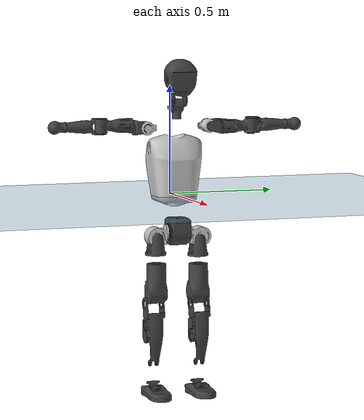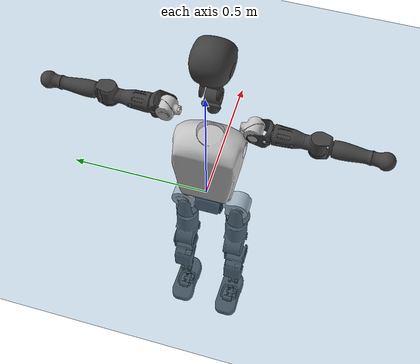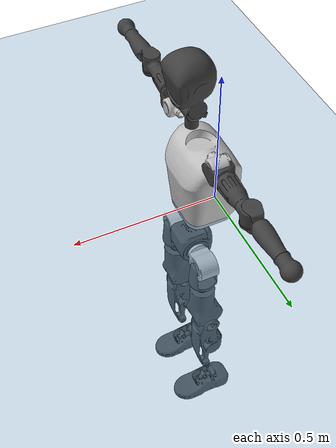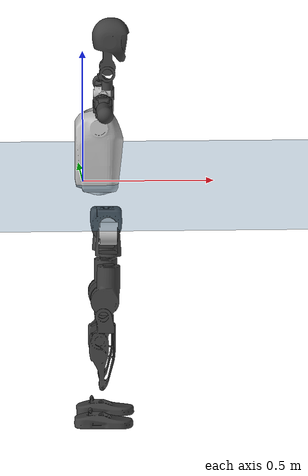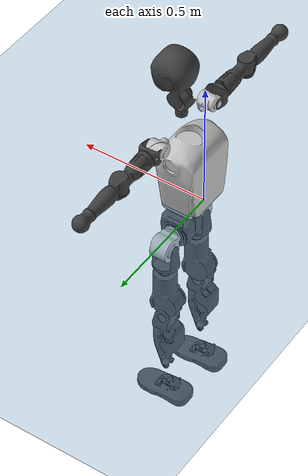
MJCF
<mujoco model="T1">
  <compiler angle="radian" assetdir="assets" balanceinertia="true" inertiafromgeom="false"/>

  <option timestep="0.005" density="1.2" viscosity="2e-05"/>

  <size nkey="1"/>

  <visual>
    <quality shadowsize="8192"/>
    <map shadowclip="0.5"/>
  </visual>

  <default>
    <default class="/">
      <joint armature="0.01" damping="0.01" frictionloss="0.1"/>
      <geom contype="0" conaffinity="0" group="1" solref="-1000 -80"/>
      <site size="0.01 0.005 0.005" group="5"/>
      <general forcelimited="true" biastype="affine" gainprm="25" biasprm="0 -25 -0.6"/>
      <default class="t1">
        <geom rgba="0.25 0.25 0.25 1"/>
        <default class="visual">
          <geom type="mesh" group="2"/>
        </default>
        <default class="collision">
          <geom group="3"/>
        </default>
        <default class="foot">
          <geom size="0.1115 0.05 0.015" type="box" condim="6" group="4" priority="1" solimp="0.015 1 0.015"/>
        </default>
        <default class="reward_collision_sphere">
          <geom group="5" rgba="1 0 0 1"/>
        </default>
      </default>
    </default>
  </default>

  <asset>
    <texture type="skybox" colorspace="auto" name="//unnamed_texture_0" builtin="gradient" rgb1="0.95 0.95 0.95" rgb2="0.95 0.95 0.95" width="100" height="600"/>
    <texture type="2d" colorspace="auto" name="texplane" builtin="checker" rgb1="0.345 0.575 0.748" rgb2="0.345 0.575 0.748" markrgb="1 1 1" width="512" height="512"/>
    <material name="MatPlane" class="/" texture="texplane" texuniform="true" texrepeat="2 2" specular="0.9"/>
    <mesh name="Trunk" class="/" file="Trunk.stl"/>
    <mesh name="H1" class="/" file="H1.stl"/>
    <mesh name="H2" class="/" file="H2.stl"/>
    <mesh name="AL1" class="/" file="AL1.stl"/>
    <mesh name="AL2" class="/" file="AL2.stl"/>
    <mesh name="AL3" class="/" file="AL3.stl"/>
    <mesh name="left_hand_link" class="/" file="left_hand_link.stl"/>
    <mesh name="AR1" class="/" file="AR1.stl"/>
    <mesh name="AR2" class="/" file="AR2.stl"/>
    <mesh name="AR3" class="/" file="AR3.stl"/>
    <mesh name="right_hand_link" class="/" file="right_hand_link.stl"/>
    <mesh name="Waist" class="/" file="Waist.stl"/>
    <mesh name="Hip_Pitch_Left" class="/" file="Hip_Pitch_Left.stl"/>
    <mesh name="Hip_Roll_Left" class="/" file="Hip_Roll_Left.stl"/>
    <mesh name="Hip_Yaw_Left" class="/" file="Hip_Yaw_Left.stl"/>
    <mesh name="Shank_Left" class="/" file="Shank_Left.stl"/>
    <mesh name="Ankle_Cross_Left" class="/" file="Ankle_Cross_Left.stl"/>
    <mesh name="left_foot_link" class="/" file="left_foot_link.stl"/>
    <mesh name="Hip_Pitch_Right" class="/" file="Hip_Pitch_Right.stl"/>
    <mesh name="Hip_Roll_Right" class="/" file="Hip_Roll_Right.stl"/>
    <mesh name="Hip_Yaw_Right" class="/" file="Hip_Yaw_Right.stl"/>
    <mesh name="Shank_Right" class="/" file="Shank_Right.stl"/>
    <mesh name="Ankle_Cross_Right" class="/" file="Ankle_Cross_Right.stl"/>
    <mesh name="right_foot_link" class="/" file="right_foot_link.stl"/>
  </asset>

  <worldbody>
    <geom name="floor" class="/" size="100 100 0.125" type="plane" group="0" material="MatPlane"/>
    <light name="toplight_shadow" class="/" pos="0 0 5" dir="0.0990148 0.0990148 -0.990148" type="directional" ambient="0.04 0.04 0.04" diffuse="0.55 0.55 0.55" specular="0.12 0.12 0.12"/>
    <light name="toplight_fill" class="/" pos="0 0 5" dir="0.0990148 0.0990148 -0.990148" type="directional" castshadow="false" ambient="0.04 0.04 0.04" diffuse="0.3 0.3 0.3" specular="0.08 0.08 0.08"/>
    <body name="trunk" childclass="t1" pos="-0.000302028 0.00238233 0.00203989" quat="0.999997 -0.000577542 0.00216138 -0.0011681">
      <inertial pos="0.0774225 0.000638425 0.146751" quat="0.999836 -0.0118616 0.0124228 -0.00568534" mass="23.8409" diaginertia="0.383939 0.0747195 0.281324"/>
      <joint name="//unnamed_joint_0" type="free" armature="0" damping="0" frictionloss="0"/>
      <geom name="//unnamed_geom_1" class="visual" rgba="0.76 0.76 0.76 1" mesh="Trunk"/>
      <geom name="//unnamed_geom_2" class="collision" size="0.0948493 0.126466 0.189699" pos="0.0833245 0 0.169008" type="box"/>
      <geom name="//unnamed_geom_3" class="reward_collision_sphere" size="0.145436" pos="0.0833245 0 0.14084"/>
      <geom name="//unnamed_geom_4" class="reward_collision_sphere" size="0.0189699" pos="0.0833245 0.0847302 0"/>
      <geom name="//unnamed_geom_5" class="reward_collision_sphere" size="0.0189699" pos="0.0833245 -0.0847302 0"/>
      <geom name="//unnamed_geom_6" class="reward_collision_sphere" size="0.0189699" pos="0.0833245 0.10666 0.253513"/>
      <geom name="//unnamed_geom_7" class="reward_collision_sphere" size="0.0189699" pos="0.0833245 -0.10666 0.253513"/>
      <site name="imu" pos="-0.0235334 -0.00081103 0.022763" size="0.0126466"/>
      <camera name="track" pos="0 -1.99365 0" quat="0.707107 0.707107 0 0" mode="trackcom"/>
      <camera name="ego_camera" pos="0.169427 0 0.59153" quat="-0.5 -0.5 0.5 0.5"/>
      <body name="H1" pos="0.0924708 -0.00175676 0.350234" quat="1 -5.63876e-07 -3.50777e-06 3.5115e-07">
        <inertial pos="-0.00215331 -0.00383827 0.0808563" quat="0.76519 -0.0068206 0.00105873 0.643768" mass="0.897879" diaginertia="0.001269 0.000215137 0.000832184"/>
        <joint name="AAHead_yaw" pos="0 0 0" axis="0.00291997 -0.00724498 0.999969" range="-1.66329 1.61115" armature="0.00764213" damping="0.0161699" frictionloss="0.0799795"/>
        <geom name="//unnamed_geom_8" class="visual" mesh="H1"/>
        <body name="H2" pos="0.001289 0.00998282 0.0865049" quat="1 -0.000413784 0.000276114 0.000105294">
          <inertial pos="0.00489526 0.00744847 0.147935" quat="0.984006 0.13208 -0.0882945 -0.0805617" mass="1.28221" diaginertia="0.0110434 0.00216648 0.00988094"/>
          <joint name="Head_pitch" pos="0 0 0" axis="0.00119852 -0.999998 0.00186652" range="-1.1938 0.341679" armature="0.010416" damping="0.0455831" frictionloss="0.137644"/>
          <geom name="//unnamed_geom_9" class="visual" mesh="H2"/>
          <geom name="//unnamed_geom_10" class="collision" size="0.101173" pos="0.0138874 0 0.154924"/>
          <geom name="//unnamed_geom_11" class="reward_collision_sphere" size="0.113819" pos="0.0277748 0 0.14084"/>
        </body>
      </body>
      <body name="AL1" pos="0.081729 0.109493 0.31632" quat="0.99999 -0.00403424 0.00124764 -0.00108583">
        <inertial pos="0.0027836 0.0464031 -0.00192188" quat="0.504568 0.497794 -0.504273 0.493275" mass="1.10728" diaginertia="0.00733907 0.00145469 0.00181074"/>
        <joint name="Left_Shoulder_Pitch" pos="0 0 0" axis="0.0055577 0.999713 -0.0233176" stiffness="0.000967043" range="-3.24812 1.05081" armature="0.0125851" damping="0.0469678" frictionloss="0.110071"/>
        <geom name="//unnamed_geom_12" class="visual" rgba="0.76 0.76 0.76 1" mesh="AL1"/>
        <body name="AL2" pos="0.0074611 0.046244 -0.000712894" quat="1 -0.000366591 0.00034685 0.000202289">
          <inertial pos="0.00694735 0.030043 0.00221302" quat="0.489361 0.517261 -0.48328 0.509321" mass="0.301809" diaginertia="0.00202577 0.000329267 0.000968874"/>
          <joint name="Left_Shoulder_Roll" pos="0 0 0" axis="-0.999952 0.00271454 -0.00941629" stiffness="0.0481485" range="-1.61701 1.77448" armature="0.00727794" damping="0.0189398" frictionloss="0.122832"/>
          <geom name="//unnamed_geom_13" class="visual" mesh="AL2"/>
          <body name="AL3" pos="-0.000151898 0.0597473 -0.00291323" quat="1 7.67516e-05 0.000321269 0.000285517">
            <inertial pos="-0.00692324 0.0929955 -0.00126054" quat="0.704685 0.709372 -0.0140623 -0.00347655" mass="2.41453" diaginertia="0.0654716 0.0137347 0.00391596"/>
            <joint name="Left_Elbow_Pitch" pos="0 0 0" axis="-0.00440846 -0.999952 -0.00880333" stiffness="0.00366235" range="-2.09652 2.29246" armature="0.00643743" damping="0.00556643" frictionloss="0.114616"/>
            <geom name="//unnamed_geom_14" class="visual" mesh="AL3"/>
            <geom name="//unnamed_geom_15" class="collision" size="0.0379397 0.0948493" pos="0 0.0498413 0" quat="0.707105 0.707108 0 0" type="cylinder"/>
            <geom name="//unnamed_geom_16" class="reward_collision_sphere" size="0.0455277"/>
            <body name="left_hand_link" pos="-0.000526522 0.14817 0.00391818" quat="0.999991 0.00255971 -0.00206519 0.00262612">
              <inertial pos="0.00867042 0.107931 0.00079194" quat="0.707816 0.706389 -0.00167187 -0.00286964" mass="0.656381" diaginertia="0.0461358 0.00791856 0.00109136"/>
              <joint name="Left_Elbow_Yaw" pos="0 0 0" axis="-0.00120007 0.00476616 0.999988" stiffness="0.00180829" range="-2.46921 0.178728" armature="0.0114765" damping="0.00152592" frictionloss="0.13599"/>
              <geom name="//unnamed_geom_17" class="visual" mesh="left_hand_link"/>
              <geom name="//unnamed_geom_18" class="collision" size="0.0379397 0.110658" pos="0 0.129587 0" quat="0.707105 0.707108 0 0" type="cylinder"/>
              <geom name="//unnamed_geom_19" class="reward_collision_sphere" size="0.0632329"/>
              <geom name="//unnamed_geom_20" class="reward_collision_sphere" size="0.044263" pos="0 0.109651 0"/>
              <geom name="//unnamed_geom_21" class="reward_collision_sphere" size="0.044263" pos="0 0.214318 0"/>
            </body>
          </body>
        </body>
      </body>
      <body name="AR1" pos="0.0787681 -0.0983653 0.310646" quat="1 -0.000418257 0.000242583 0.000274605">
        <inertial pos="0.0028385 -0.035076 -0.000484352" quat="0.509527 0.486668 -0.515482 0.487661" mass="1.15579" diaginertia="0.00782894 0.00134049 0.00172624"/>
        <joint name="Right_Shoulder_Pitch" pos="0 0 0" axis="0.0315707 -0.999465 0.00852487" stiffness="0.0469734" range="-1.20438 3.36157" armature="0.00838875" damping="0.00876741" frictionloss="0.139352"/>
        <geom name="//unnamed_geom_22" class="visual" rgba="0.76 0.76 0.76 1" mesh="AR1"/>
        <body name="AR2" pos="-0.00894312 -0.0506154 0.00326691" quat="0.999993 -0.000652444 -0.00109859 -0.00346988">
          <inertial pos="0.00925661 -0.0353727 0.000945199" quat="0.51635 0.489985 -0.504992 0.488141" mass="0.353798" diaginertia="0.00206377 0.000308131 0.000968233"/>
          <joint name="Right_Shoulder_Roll" pos="0 0 0" axis="-0.999989 -0.00226087 -0.00421701" range="-1.75496 1.563" armature="0.013444" damping="0" frictionloss="0.0645185"/>
          <geom name="//unnamed_geom_23" class="visual" mesh="AR2"/>
          <body name="AR3" pos="-0.00344167 -0.0609624 0.010026" quat="1 0.000315848 -0.000375699 -0.000128526">
            <inertial pos="0.00215781 -0.0775691 0.00148627" quat="0.687702 0.725747 0.0175587 -0.00699987" mass="2.08382" diaginertia="0.0671781 0.0125728 0.00317011"/>
            <joint name="Right_Elbow_Pitch" pos="0 0 0" axis="-0.0146652 0.999393 -0.0315932" range="-2.13065 2.33431" armature="0.0177412" damping="0.017383" frictionloss="0.101437"/>
            <geom name="//unnamed_geom_24" class="visual" mesh="AR3"/>
            <geom name="//unnamed_geom_25" class="collision" size="0.0379397 0.0948493" pos="0 -0.0498413 0" quat="0.707105 0.707108 0 0" type="cylinder"/>
            <geom name="//unnamed_geom_26" class="reward_collision_sphere" size="0.0455277"/>
            <body name="right_hand_link" pos="-0.000428112 -0.148018 -0.00147367" quat="0.999996 0.00209897 -0.00178887 -0.00115273">
              <inertial pos="0.00222547 -0.107231 -0.00678779" quat="0.705313 0.708895 0.000175374 -0.000881764" mass="0.667443" diaginertia="0.0422365 0.00842706 0.00123078"/>
              <joint name="Right_Elbow_Yaw" pos="0 0 0" axis="0.0130333 0.0135639 0.999823" stiffness="0.00192826" range="-0.038896 2.3596" armature="0.00795691" damping="0.0540283" frictionloss="0.0953264"/>
              <geom name="//unnamed_geom_27" class="visual" mesh="right_hand_link"/>
              <geom name="//unnamed_geom_28" class="collision" size="0.0379397 0.110658" pos="0 -0.129587 0" quat="0.707105 0.707108 0 0" type="cylinder"/>
              <geom name="//unnamed_geom_29" class="reward_collision_sphere" size="0.0632329"/>
              <geom name="//unnamed_geom_30" class="reward_collision_sphere" size="0.044263" pos="0 -0.109651 0"/>
              <geom name="//unnamed_geom_31" class="reward_collision_sphere" size="0.044263" pos="0 -0.214318 0"/>
            </body>
          </body>
        </body>
      </body>
      <body name="Waist" pos="0.0897546 0.00600576 -0.17148" quat="1 -0.000101457 -0.000160986 -0.000125075">
        <inertial pos="0.0105394 -0.00104598 0.0119068" quat="0.980673 0.0151081 -0.193377 -0.0256331" mass="5.84196" diaginertia="0.0317115 0.00569436 0.0292494"/>
        <joint name="Waist" pos="0 0 0" axis="-0.0346641 -0.00652804 0.999378" stiffness="0.0125404" range="-1.54701 1.71592" armature="0.0138228" damping="0" frictionloss="0.084048"/>
        <geom name="//unnamed_geom_32" class="visual" mesh="Waist"/>
        <body name="Hip_Pitch_Left" pos="0.00242076 0.106913 -0.000367665" quat="0.999999 0.00102626 -0.000535132 4.44013e-06">
          <inertial pos="-7.96033e-05 -0.00536525 -0.0277152" quat="0.974225 0.225016 0.0156785 0.00288347" mass="2.0675" diaginertia="0.00933034 0.00133039 0.00697912"/>
          <joint name="Left_Hip_Pitch" pos="0 0 0" axis="0.0266876 0.998738 -0.042552" stiffness="0.0414748" range="-1.8074 1.39946" armature="0.0111054" damping="0.0401522" frictionloss="0.115316"/>
          <geom name="//unnamed_geom_33" class="visual" rgba="0.76 0.76 0.76 1" mesh="Hip_Pitch_Left"/>
          <body name="Hip_Roll_Left" pos="0.00037401 -0.0101367 -0.034573" quat="0.999988 0.00331411 -0.00199111 0.00290396">
            <inertial pos="0.00739711 0.00121694 -0.0744879" quat="0.706316 -0.00626876 -0.00580029 0.707846" mass="0.85542" diaginertia="0.00908841 0.00170302 0.00318242"/>
            <joint name="Left_Hip_Roll" pos="0 0 0" axis="-0.999101 0.0265957 0.0330277" range="-1.59642 0.165917" armature="0.0139696" damping="0" frictionloss="0.118767"/>
            <geom name="//unnamed_geom_34" class="visual" mesh="Hip_Roll_Left"/>
            <geom name="//unnamed_geom_35" class="reward_collision_sphere" size="0.0695562"/>
            <body name="Hip_Yaw_Left" pos="-0.000923669 0.00178336 -0.113872" quat="1 0.000128925 5.02008e-05 -0.000188286">
              <inertial pos="-0.00820154 0.000478975 -0.126193" quat="0.692809 0.00707979 -0.0284629 0.720525" mass="4.88027" diaginertia="0.134694 0.0266745 0.0157601"/>
              <joint name="Left_Hip_Yaw" pos="0 0 0" axis="-0.00440347 -0.0109289 -0.999931" range="-0.905087 1.02147" armature="0.0125185" damping="0" frictionloss="0.138922"/>
              <geom name="//unnamed_geom_36" class="visual" mesh="Hip_Yaw_Left"/>
              <geom name="//unnamed_geom_37" class="collision" size="0.0632329 0.101173" type="cylinder"/>
              <body name="Shank_Left" pos="-0.0186973 0.00737197 -0.185653" quat="0.999999 -0.000638114 -0.00028974 0.000748661">
                <inertial pos="-0.00718578 0.0056896 -0.177312" quat="0.99535 -0.0113154 -0.0221834 0.0930474" mass="3.23031" diaginertia="0.170646 0.031893 0.010813"/>
                <joint name="Left_Knee_Pitch" pos="0 0 0" axis="0.00658194 0.999974 0.00307006" range="-0.0186998 2.38647" armature="0.00833899" damping="0.0287132" frictionloss="0.122243"/>
                <geom name="//unnamed_geom_38" class="visual" mesh="Shank_Left"/>
                <geom name="//unnamed_geom_39" class="collision" size="0.0632329 0.0948493" pos="0 0 -0.169008" type="cylinder"/>
                <geom name="//unnamed_geom_40" class="reward_collision_sphere" size="0.0822027"/>
                <body name="Ankle_Cross_Left" pos="-0.0011752 -0.00476098 -0.38821" quat="0.999993 -0.0033048 -0.00132618 0.000913406">
                  <inertial pos="-0.00314108 0.00911145 -0.012934" quat="0.420438 0.553295 0.558059 0.453505" mass="0.143044" diaginertia="0.00014375 2.26282e-05 5.78751e-05"/>
                  <joint name="Left_Ankle_Pitch" pos="0 0 0" axis="0.0124982 0.999805 0.0152687" range="-0.854399 0.345947" armature="0.0128721" damping="0" frictionloss="0.138913"/>
                  <geom name="//unnamed_geom_41" class="visual" mesh="Ankle_Cross_Left"/>
                  <body name="left_foot_link" pos="0.00610165 0.00876009 -0.0158986" quat="1 0.000668357 -7.23902e-05 -0.000353748">
                    <inertial pos="-0.00731629 -0.00201914 -0.0223391" quat="-0.00284055 0.621574 -2.03223e-06 0.78335" mass="1.40836" diaginertia="0.013645 0.00236845 0.0121589"/>
                    <joint name="Left_Ankle_Roll" pos="0 0 0" axis="-0.999982 -0.00591667 0.000717923" range="-0.474936 0.424929" armature="0.0175178" damping="0.0210327" frictionloss="0.117793"/>
                    <geom name="//unnamed_geom_42" class="visual" mesh="left_foot_link"/>
                    <geom name="left_foot" class="foot" size="0.0962199 0.0770004 0.0196831" pos="0.0138874 0 -0.0211261"/>
                    <geom name="//unnamed_geom_44" class="reward_collision_sphere" size="0.0657622" pos="0.0138874 0 -0.0211261"/>
                    <geom name="//unnamed_geom_45" class="reward_collision_sphere" size="0.0379397" pos="0.13193 -0.022927 -0.0211261"/>
                    <geom name="//unnamed_geom_46" class="reward_collision_sphere" size="0.0379397" pos="-0.0972119 -0.022927 -0.0211261"/>
                    <site name="left_foot" class="foot" pos="0.0138874 0 -0.0211261" size="0.0126466"/>
                  </body>
                </body>
              </body>
            </body>
          </body>
        </body>
        <body name="Hip_Pitch_Right" pos="0.00560505 -0.110279 0.00391907" quat="0.999989 0.00235286 0.00406299 0.000154689">
          <inertial pos="-0.000606368 0.017692 -0.0244552" quat="0.974716 -0.221472 0.0296147 -0.00149736" mass="2.16835" diaginertia="0.0102346 0.00162402 0.0076543"/>
          <joint name="Right_Hip_Pitch" pos="0 0 0" axis="0.00107158 -0.999996 0.00241963" stiffness="0.000754973" range="-1.47156 1.78228" armature="0.0140335" damping="0.0179648" frictionloss="0.071639"/>
          <geom name="//unnamed_geom_47" class="visual" rgba="0.76 0.76 0.76 1" mesh="Hip_Pitch_Right"/>
          <body name="Hip_Roll_Right" pos="0.00122651 0.000775899 -0.0273224" quat="0.999999 -0.000992799 -0.000100978 0.000289065">
            <inertial pos="0.00915286 -0.00943431 -0.0668109" quat="0.706996 -0.0118276 -0.0120304 0.707017" mass="0.745635" diaginertia="0.00846561 0.00146921 0.00281373"/>
            <joint name="Right_Hip_Roll" pos="0 0 0" axis="-0.999963 -0.00717499 0.00483372" range="-0.23437 1.54887" armature="0.0114561" damping="0.013035" frictionloss="0.137859"/>
            <geom name="//unnamed_geom_48" class="visual" mesh="Hip_Roll_Right"/>
            <geom name="//unnamed_geom_49" class="reward_collision_sphere" size="0.0695562"/>
            <body name="Hip_Yaw_Right" pos="8.09948e-05 0.00383771 -0.11753" quat="0.999999 -0.00032382 0.000919291 0.000493412">
              <inertial pos="-0.0136957 0.00395506 -0.124844" quat="0.712956 -0.0330884 -0.0334294 0.699629" mass="4.5631" diaginertia="0.126527 0.0252879 0.0139739"/>
              <joint name="Right_Hip_Yaw" pos="0 0 0" axis="-0.00764112 -0.000885508 -0.99997" range="-1.03865 1.12744" armature="0.0187623" damping="0" frictionloss="0.075954"/>
              <geom name="//unnamed_geom_50" class="visual" mesh="Hip_Yaw_Right"/>
              <geom name="//unnamed_geom_51" class="collision" size="0.0632329 0.101173" type="cylinder"/>
              <body name="Shank_Right" pos="-0.0199422 -0.00844706 -0.189058" quat="0.999993 0.00307435 8.25924e-05 0.00203032">
                <inertial pos="-0.00764514 -0.00553114 -0.181473" quat="0.999172 0.0109736 -0.0366613 -0.0138469" mass="3.8882" diaginertia="0.189701 0.0335957 0.00956365"/>
                <joint name="Right_Knee_Pitch" pos="0 0 0" axis="0.0237577 -0.999447 0.0232693" range="-2.46931 0.120954" armature="0.0117957" damping="0" frictionloss="0.132238"/>
                <geom name="//unnamed_geom_52" class="visual" mesh="Shank_Right"/>
                <geom name="//unnamed_geom_53" class="collision" size="0.0632329 0.0948493" pos="0 0 -0.169008" type="cylinder"/>
                <geom name="//unnamed_geom_54" class="reward_collision_sphere" size="0.0822027"/>
                <body name="Ankle_Cross_Right" pos="-0.00248054 0.00639319 -0.395679" quat="0.999987 -0.00398476 0.00312742 0.00023202">
                  <inertial pos="-0.00435793 0.000805785 -0.0167002" quat="0.435923 0.545957 0.553492 0.453374" mass="0.151772" diaginertia="0.000151025 2.51879e-05 6.79846e-05"/>
                  <joint name="Right_Ankle_Pitch" pos="0 0 0" axis="0.00148156 -0.999999 -0.000833457" range="-0.221861 0.901678" armature="0.0140318" damping="0.000753519" frictionloss="0.115715"/>
                  <geom name="//unnamed_geom_55" class="visual" mesh="Ankle_Cross_Right"/>
                  <body name="right_foot_link" pos="0.000760109 0.00695428 -0.0148569" quat="1 -0.000349667 0.000121658 8.17206e-05">
                    <inertial pos="-0.00264131 -0.000455368 -0.0066611" quat="-0.00130542 0.621357 0.00266229 0.783522" mass="1.38441" diaginertia="0.0142052 0.00234351 0.0127074"/>
                    <joint name="Right_Ankle_Roll" pos="0 0 0" axis="-0.999726 -0.0204521 -0.0113582" stiffness="0.0169584" range="-0.64239 0.418358" armature="0.0083304" damping="0.00629573" frictionloss="0.155927"/>
                    <geom name="//unnamed_geom_56" class="visual" mesh="right_foot_link"/>
                    <geom name="right_foot" class="foot" size="0.112478 0.0748431 0.0186818" pos="0.0138874 0 -0.0211261"/>
                    <geom name="//unnamed_geom_58" class="reward_collision_sphere" size="0.0505863"/>
                    <geom name="//unnamed_geom_59" class="reward_collision_sphere" size="0.0379397" pos="0.0138874 0 -0.0211261"/>
                    <geom name="//unnamed_geom_60" class="reward_collision_sphere" size="0.0379397" pos="0.13193 0.022927 -0.0211261"/>
                    <geom name="//unnamed_geom_61" class="reward_collision_sphere" size="0.0379397" pos="-0.0972119 0.022927 -0.0211261"/>
                    <site name="right_foot" class="foot" pos="0.0138874 0 -0.0211261" size="0.0126466"/>
                  </body>
                </body>
              </body>
            </body>
          </body>
        </body>
      </body>
    </body>
  </worldbody>

  <contact>
    <pair class="/" geom1="floor" geom2="left_foot" name="//unnamed_contact_0"/>
    <pair class="/" geom1="floor" geom2="right_foot" name="//unnamed_contact_1"/>
  </contact>

  <actuator>
    <general name="AAHead_yaw" class="/" joint="AAHead_yaw" forcerange="-9.95101 9.95101" gainprm="34.2005" biasprm="0 -34.2005 -0.768165"/>
    <general name="Head_pitch" class="/" joint="Head_pitch" forcerange="-7.39338 7.39338" gainprm="34.2005" biasprm="0 -34.2005 -0.768165"/>
    <general name="Left_Shoulder_Pitch" class="/" joint="Left_Shoulder_Pitch" forcerange="-21.086 21.086" gainprm="34.2005" biasprm="0 -34.2005 -0.768165"/>
    <general name="Left_Shoulder_Roll" class="/" joint="Left_Shoulder_Roll" forcerange="-16.9225 16.9225" gainprm="34.2005" biasprm="0 -34.2005 -0.768165"/>
    <general name="Left_Elbow_Pitch" class="/" joint="Left_Elbow_Pitch" forcerange="-21.489 21.489" gainprm="34.2005" biasprm="0 -34.2005 -0.768165"/>
    <general name="Left_Elbow_Yaw" class="/" joint="Left_Elbow_Yaw" forcerange="-25.0555 25.0555" gainprm="34.2005" biasprm="0 -34.2005 -0.768165"/>
    <general name="Right_Shoulder_Pitch" class="/" joint="Right_Shoulder_Pitch" forcerange="-23.4177 23.4177" gainprm="34.2005" biasprm="0 -34.2005 -0.768165"/>
    <general name="Right_Shoulder_Roll" class="/" joint="Right_Shoulder_Roll" forcerange="-23.376 23.376" gainprm="34.2005" biasprm="0 -34.2005 -0.768165"/>
    <general name="Right_Elbow_Pitch" class="/" joint="Right_Elbow_Pitch" forcerange="-23.8792 23.8792" gainprm="34.2005" biasprm="0 -34.2005 -0.768165"/>
    <general name="Right_Elbow_Yaw" class="/" joint="Right_Elbow_Yaw" forcerange="-21.7984 21.7984" gainprm="34.2005" biasprm="0 -34.2005 -0.768165"/>
    <general name="Waist" class="/" joint="Waist" forcerange="-47.8288 47.8288" gainprm="34.2005" biasprm="0 -34.2005 -0.768165"/>
    <general name="Left_Hip_Pitch" class="/" joint="Left_Hip_Pitch" forcerange="-57.6315 57.6315" gainprm="34.2005" biasprm="0 -34.2005 -0.768165"/>
    <general name="Left_Hip_Roll" class="/" joint="Left_Hip_Roll" forcerange="-35.4906 35.4906" gainprm="34.2005" biasprm="0 -34.2005 -0.768165"/>
    <general name="Left_Hip_Yaw" class="/" joint="Left_Hip_Yaw" forcerange="-36.4324 36.4324" gainprm="34.2005" biasprm="0 -34.2005 -0.768165"/>
    <general name="Left_Knee_Pitch" class="/" joint="Left_Knee_Pitch" forcerange="-92.9826 92.9826" gainprm="34.2005" biasprm="0 -34.2005 -0.768165"/>
    <general name="Left_Ankle_Pitch" class="/" joint="Left_Ankle_Pitch" forcerange="-16.5138 16.5138" gainprm="34.2005" biasprm="0 -34.2005 -0.768165"/>
    <general name="Left_Ankle_Roll" class="/" joint="Left_Ankle_Roll" forcerange="-26.1035 26.1035" gainprm="34.2005" biasprm="0 -34.2005 -0.768165"/>
    <general name="Right_Hip_Pitch" class="/" joint="Right_Hip_Pitch" forcerange="-56.3118 56.3118" gainprm="34.2005" biasprm="0 -34.2005 -0.768165"/>
    <general name="Right_Hip_Roll" class="/" joint="Right_Hip_Roll" forcerange="-46.6457 46.6457" gainprm="34.2005" biasprm="0 -34.2005 -0.768165"/>
    <general name="Right_Hip_Yaw" class="/" joint="Right_Hip_Yaw" forcerange="-26.6151 26.6151" gainprm="34.2005" biasprm="0 -34.2005 -0.768165"/>
    <general name="Right_Knee_Pitch" class="/" joint="Right_Knee_Pitch" forcerange="-76.6344 76.6344" gainprm="34.2005" biasprm="0 -34.2005 -0.768165"/>
    <general name="Right_Ankle_Pitch" class="/" joint="Right_Ankle_Pitch" forcerange="-25.312 25.312" gainprm="34.2005" biasprm="0 -34.2005 -0.768165"/>
    <general name="Right_Ankle_Roll" class="/" joint="Right_Ankle_Roll" forcerange="-18.554 18.554" gainprm="34.2005" biasprm="0 -34.2005 -0.768165"/>
  </actuator>

  <sensor>
    <gyro site="imu" name="imu_angular_velocity"/>
    <velocimeter site="imu" name="imu_linear_velocity"/>
    <framelinvel objtype="site" objname="left_foot" name="left_foot_global_linear_velocity"/>
    <framelinvel objtype="site" objname="right_foot" name="right_foot_global_linear_velocity"/>
  </sensor>

  <keyframe>
    <key name="home" qpos="0 0 0.6385 1 0 0 0 0 0 0 1.4 0 -0.4 0 -1.4 0 0.4 0 -0.4 0 0 0.8 -0.4 0 0.4 0 0 -0.8 0.4 0"/>
  </keyframe>
</mujoco>
